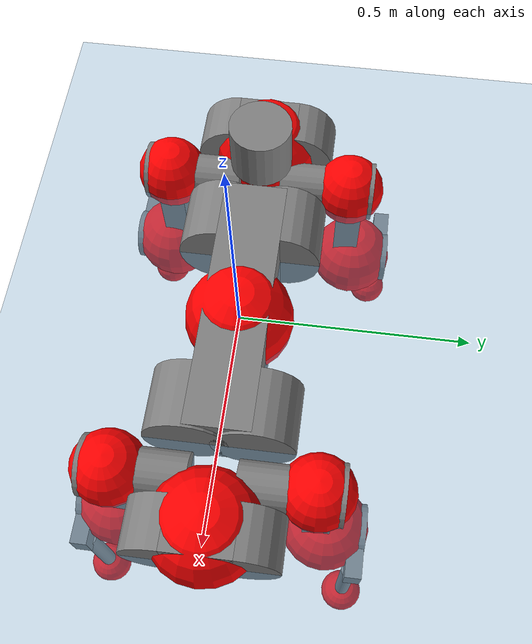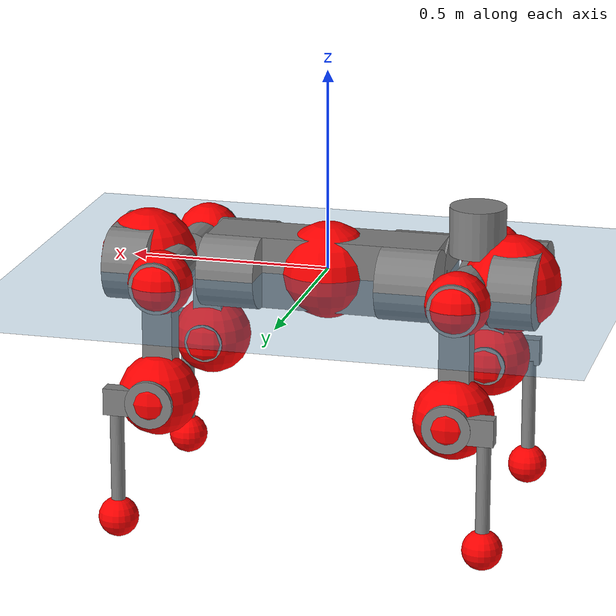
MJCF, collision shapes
<mujoco model="anymal_c">
  <compiler angle="radian" assetdir="assets" balanceinertia="true" inertiafromgeom="false"/>

  <option timestep="0.005" density="1.2" viscosity="2e-05"/>

  <size nkey="1"/>

  <visual>
    <quality shadowsize="8192"/>
    <map shadowclip="0.5"/>
  </visual>

  <default>
    <default class="/">
      <material specular="0" shininess="0.25"/>
      <geom contype="0" conaffinity="0" group="1" solref="-1000 -80"/>
      <site size="0.01 0.005 0.005" group="5"/>
      <general forcelimited="true" forcerange="-80 80" biastype="affine" gainprm="80" biasprm="0 -80 -2"/>
      <default class="anymal_c">
        <joint armature="0.01" damping="0.01" frictionloss="0.1"/>
        <default class="visual">
          <geom type="mesh" group="2"/>
          <default class="visual_zflip"/>
        </default>
        <default class="collision">
          <geom type="cylinder" group="3"/>
          <default class="foot">
            <geom size="0.03 0 0" type="sphere" condim="6" priority="1" friction="0.8 0.02 0.01" solimp="0.015 1 0.03"/>
          </default>
        </default>
      </default>
      <default class="reward_collision_sphere">
        <geom group="5" rgba="1 0 0 1"/>
      </default>
    </default>
  </default>

  <asset>
    <texture type="skybox" colorspace="auto" name="//unnamed_texture_0" builtin="gradient" rgb1="0.95 0.95 0.95" rgb2="0.95 0.95 0.95" width="100" height="600"/>
    <texture type="2d" colorspace="auto" name="texplane" builtin="checker" rgb1="0.345 0.575 0.748" rgb2="0.345 0.575 0.748" markrgb="1 1 1" width="512" height="512"/>
    <texture type="2d" colorspace="linear" name="base" file="base.png"/>
    <texture type="2d" colorspace="linear" name="top_shell" file="top_shell.png"/>
    <texture type="2d" colorspace="linear" name="bottom_shell" file="bottom_shell.png"/>
    <texture type="2d" colorspace="linear" name="remote" file="remote.png"/>
    <texture type="2d" colorspace="linear" name="hatch" file="hatch.png"/>
    <texture type="2d" colorspace="linear" name="handle" file="handle.png"/>
    <texture type="2d" colorspace="linear" name="face" file="face.png"/>
    <texture type="2d" colorspace="linear" name="battery" file="battery.png"/>
    <texture type="2d" colorspace="linear" name="lidar_cage" file="lidar_cage.png"/>
    <texture type="2d" colorspace="linear" name="depth_camera" file="depth_camera.png"/>
    <texture type="2d" colorspace="linear" name="wide_angle_camera" file="wide_angle_camera.png"/>
    <texture type="2d" colorspace="linear" name="lidar" file="lidar.png"/>
    <texture type="2d" colorspace="linear" name="drive" file="drive.png"/>
    <texture type="2d" colorspace="linear" name="hip_l" file="hip_l.png"/>
    <texture type="2d" colorspace="linear" name="shank_l" file="shank_l.png"/>
    <texture type="2d" colorspace="linear" name="foot" file="foot.png"/>
    <texture type="2d" colorspace="linear" name="thigh" file="thigh.png"/>
    <texture type="2d" colorspace="linear" name="shank_r" file="shank_r.png"/>
    <texture type="2d" colorspace="linear" name="hip_r" file="hip_r.png"/>
    <material name="MatPlane" class="/" texture="texplane" texuniform="true" texrepeat="2 2" specular="0.9" shininess="0.5"/>
    <material name="black_plastic" class="/" rgba="0.007 0.007 0.007 1"/>
    <material name="green" class="/" rgba="0.052 0.178 0.033 1"/>
    <material name="red" class="/" rgba="0.178 0.006 0.005 1"/>
    <material name="yellow" class="/" rgba="0.178 0.119 0.006 1"/>
    <material name="lwl" class="/" rgba="0.8 0.8 0.8 1"/>
    <material name="base" class="/" texture="base"/>
    <material name="top_shell" class="/" texture="top_shell"/>
    <material name="bottom_shell" class="/" texture="bottom_shell"/>
    <material name="hip_l" class="/" texture="hip_l"/>
    <material name="thigh" class="/" texture="thigh"/>
    <material name="shank_l" class="/" texture="shank_l"/>
    <material name="foot" class="/" texture="foot"/>
    <material name="hip_r" class="/" texture="hip_r"/>
    <material name="shank" class="/" texture="shank_r"/>
    <material name="hatch" class="/" texture="hatch"/>
    <material name="remote" class="/" texture="remote"/>
    <material name="handle" class="/" texture="handle"/>
    <material name="face" class="/" texture="face"/>
    <material name="depth_camera" class="/" texture="depth_camera"/>
    <material name="wide_angle_camera" class="/" texture="wide_angle_camera"/>
    <material name="battery" class="/" texture="battery"/>
    <material name="lidar_cage" class="/" texture="lidar_cage"/>
    <material name="lidar" class="/" texture="lidar"/>
    <material name="drive" class="/" texture="drive"/>
    <mesh name="base_0" class="/" file="base_0.obj"/>
    <mesh name="base_1" class="/" file="base_1.obj"/>
    <mesh name="base_2" class="/" file="base_2.obj"/>
    <mesh name="base_3" class="/" file="base_3.obj"/>
    <mesh name="base_4" class="/" file="base_4.obj"/>
    <mesh name="base_5" class="/" file="base_5.obj"/>
    <mesh name="top_shell" class="/" file="top_shell.obj"/>
    <mesh name="bottom_shell" class="/" file="bottom_shell.obj"/>
    <mesh name="remote" class="/" file="remote.obj"/>
    <mesh name="handle" class="/" file="handle.obj"/>
    <mesh name="face" class="/" file="face.obj"/>
    <mesh name="wide_angle_camera" class="/" file="wide_angle_camera.obj"/>
    <mesh name="depth_camera" class="/" file="depth_camera.obj"/>
    <mesh name="battery" class="/" file="battery.obj"/>
    <mesh name="lidar_cage" class="/" file="lidar_cage.obj"/>
    <mesh name="lidar" class="/" file="lidar.obj"/>
    <mesh name="drive" class="/" file="drive.obj"/>
    <mesh name="hip_l" class="/" file="hip_l.obj"/>
    <mesh name="thigh" class="/" file="thigh.obj"/>
    <mesh name="shank_l" class="/" file="shank_l.obj"/>
    <mesh name="foot" class="/" file="foot.obj"/>
    <mesh name="hip_r" class="/" file="hip_r.obj"/>
    <mesh name="hatch" class="/" file="hatch.obj"/>
    <mesh name="shank_r" class="/" file="shank_r.obj"/>
  </asset>

  <worldbody>
    <geom name="floor" class="/" size="100 100 0.125" type="plane" group="0" material="MatPlane"/>
    <light name="toplight_shadow" class="/" pos="0 0 5" dir="0.0990148 0.0990148 -0.990148" type="directional" ambient="0.04 0.04 0.04" diffuse="0.55 0.55 0.55" specular="0.12 0.12 0.12"/>
    <light name="toplight_fill" class="/" pos="0 0 5" dir="0.0990148 0.0990148 -0.990148" type="directional" castshadow="false" ambient="0.04 0.04 0.04" diffuse="0.3 0.3 0.3" specular="0.08 0.08 0.08"/>
    <body name="trunk" childclass="anymal_c" pos="-0.00106972 0.00034157 -0.00213053" quat="0.999999 -3.7161e-06 -0.00118587 0.000334051">
      <inertial pos="0.00200518 0.0026841 0.0452959" quat="0.501811 0.504829 0.488973 0.504221" mass="18.7465" diaginertia="0.752084 0.64463 0.186702"/>
      <joint name="//unnamed_joint_0" type="free" armature="0" damping="0" frictionloss="0"/>
      <geom name="//unnamed_geom_1" class="visual" material="green" mesh="base_0"/>
      <geom name="//unnamed_geom_2" class="visual" material="yellow" mesh="base_1"/>
      <geom name="//unnamed_geom_3" class="visual" material="red" mesh="base_2"/>
      <geom name="//unnamed_geom_4" class="visual" material="black_plastic" mesh="base_3"/>
      <geom name="//unnamed_geom_5" class="visual" material="lwl" mesh="base_4"/>
      <geom name="//unnamed_geom_6" class="visual" material="base" mesh="base_5"/>
      <geom name="trunk_1" class="collision" size="0.289201 0.0698071 0.089752" type="box"/>
      <geom name="trunk_2" class="collision" size="0.089752 0.0723002" pos="0.223017 0.0700204 0" quat="0.707107 0 0.707107 0"/>
      <geom name="trunk_3" class="collision" size="0.089752 0.0723002" pos="-0.223017 0.0700204 0" quat="0.707107 0 0.707107 0"/>
      <geom name="trunk_4" class="collision" size="0.089752 0.0723002" pos="0.223017 -0.0700204 0" quat="0.707107 0 0.707107 0"/>
      <geom name="trunk_5" class="collision" size="0.089752 0.0723002" pos="-0.223017 -0.0700204 0" quat="0.707107 0 0.707107 0"/>
      <geom name="//unnamed_geom_12" class="visual" material="top_shell" mesh="top_shell"/>
      <geom name="//unnamed_geom_13" class="visual" material="bottom_shell" mesh="bottom_shell"/>
      <geom name="//unnamed_geom_14" class="visual" material="remote" mesh="remote"/>
      <geom name="//unnamed_geom_15" class="visual" material="handle" mesh="handle"/>
      <geom name="//unnamed_geom_16" class="visual" pos="0.425014 0 0" quat="1 0 0 0" material="face" mesh="face"/>
      <geom name="trunk_6" class="collision" size="0.0548484 0.0698071 0.089752" pos="0.48141 0 0" type="box"/>
      <geom name="//unnamed_geom_18" class="collision" size="0.089752 0.0548484" pos="0.48141 0.0700204 0" quat="0.707107 0 0.707107 0"/>
      <geom name="//unnamed_geom_19" class="collision" size="0.089752 0.0548484" pos="0.48141 -0.0700204 0" quat="0.707107 0 0.707107 0"/>
      <geom name="//unnamed_geom_20" class="visual" pos="0.473358 0 -0.0277587" quat="0.965926 0 0.258819 0" material="depth_camera" mesh="depth_camera"/>
      <geom name="//unnamed_geom_21" class="visual" pos="0.526013 0 0.0144621" material="wide_angle_camera" mesh="wide_angle_camera"/>
      <geom name="//unnamed_geom_22" class="visual_zflip" pos="-0.425014 0 0" quat="0 0 0 1" material="face" mesh="face"/>
      <geom name="trunk_7" class="collision" size="0.0548484 0.0698071 0.089752" pos="-0.48141 0 0" quat="0 0 0 1" type="box"/>
      <geom name="//unnamed_geom_24" class="collision" size="0.089752 0.0548484" pos="-0.48141 -0.0700204 0" quat="0 -0.707107 0 0.707107"/>
      <geom name="//unnamed_geom_25" class="collision" size="0.089752 0.0548484" pos="-0.48141 0.0700204 0" quat="0 -0.707107 0 0.707107"/>
      <geom name="//unnamed_geom_26" class="visual" pos="-0.473358 0 -0.0277587" quat="0 -0.258819 0 0.965926" material="depth_camera" mesh="depth_camera"/>
      <geom name="//unnamed_geom_27" class="visual_zflip" pos="-0.526013 0 0.0144621" quat="0 0 0 1" material="wide_angle_camera" mesh="wide_angle_camera"/>
      <geom name="//unnamed_geom_28" class="visual" material="battery" mesh="battery"/>
      <geom name="//unnamed_geom_29" class="visual" pos="0 0.0761508 0.0285151" quat="0.683013 -0.183013 0.183013 0.683013" material="depth_camera" mesh="depth_camera"/>
      <geom name="//unnamed_geom_30" class="visual" pos="0 -0.0761508 0.0285151" quat="0.683013 0.183013 0.183013 -0.683013" material="depth_camera" mesh="depth_camera"/>
      <geom name="//unnamed_geom_31" class="visual" pos="-0.373233 0 0.0710064" quat="1 0 0 0" material="lidar_cage" mesh="lidar_cage"/>
      <geom name="trunk_8" class="collision" size="0.0698071 0.0598346" pos="-0.373233 0 0.128971"/>
      <geom name="//unnamed_geom_33" class="visual" pos="-0.373233 -9.85112e-06 0.137376" quat="0.707107 0 0 -0.707107" material="lidar" mesh="lidar"/>
      <geom name="//unnamed_geom_34" class="visual" pos="0.307507 0.104018 5.90272e-10" quat="0.258819 0.965926 0 0" material="drive" mesh="drive"/>
      <geom name="//unnamed_geom_35" class="visual" pos="0.307507 -0.104018 -5.90272e-10" quat="0.258819 -0.965926 0 0" material="drive" mesh="drive"/>
      <geom name="//unnamed_geom_36" class="visual" pos="-0.307507 0.104018 -5.90272e-10" quat="0 0 0.965926 -0.258819" material="drive" mesh="drive"/>
      <geom name="//unnamed_geom_37" class="visual" pos="-0.307507 -0.104018 5.90272e-10" quat="0 0 -0.965926 -0.258819" material="drive" mesh="drive"/>
      <geom name="//unnamed_geom_38" class="visual" pos="0.118943 0 0.0705234" quat="1 0 0 0" material="hatch" mesh="hatch"/>
      <geom name="//unnamed_geom_39" class="reward_collision_sphere" size="0.119669"/>
      <geom name="//unnamed_geom_40" class="reward_collision_sphere" size="0.119669" pos="0.461415 0 0"/>
      <geom name="//unnamed_geom_41" class="reward_collision_sphere" size="0.119669" pos="-0.461415 0 0"/>
      <site name="imu" pos="0.251092 0.020251 0.0306145" size="0.00997244"/>
      <camera name="track" pos="0 -2.00058 0" quat="0.707107 0.707107 0 0" mode="trackcom"/>
      <camera name="ego_camera" pos="0.461415 0 -0.0386429" quat="-0.5 -0.5 0.5 0.5"/>
      <body name="LF_HIP" pos="0.308295 0.105594 0.0025411" quat="0.258931 0.965896 9.82672e-05 0.000201848">
        <inertial pos="0.0555533 -0.01443 -0.00998378" quat="-0.133975 0.712275 -0.126485 0.677286" mass="2.68347" diaginertia="0.00667075 0.0047753 0.00268721"/>
        <joint name="LF_HAA" pos="0 0 0" axis="0.999929 0.00119346 -0.0118668" range="-0.730532 0.531537" armature="0.00995077" damping="0" frictionloss="0.110194"/>
        <geom name="//unnamed_geom_42" class="visual" pos="0 3.4723e-05 -5.70323e-06" quat="0.258819 -0.965926 0 0" material="hip_l" mesh="hip_l"/>
        <geom name="//unnamed_geom_43" class="visual" pos="0.0614195 -0.0740804 -0.0425173" quat="0.183013 -0.683013 0.683013 0.183013" material="drive" mesh="drive"/>
        <geom name="//unnamed_geom_44" class="collision" size="0.0498622 0.0698071" pos="0.0614195 -0.0119633 -0.00667074" quat="-0.353553 -0.612372 0.612372 -0.353553"/>
        <body name="LF_THIGH" pos="0.0589671 -0.0706549 -0.0381513" quat="0.18302 -0.683003 0.683021 0.183011">
          <inertial pos="0.0318884 0.000716531 -0.23698" quat="0.993259 -0.00554622 -0.0787298 0.0849007" mass="2.92505" diaginertia="0.0328337 0.0289616 0.00328218"/>
          <joint name="LF_HFE" pos="0 0 0" axis="0.999995 -0.00276928 0.00169855" range="-3.19126 3.14005" armature="0.00872612" damping="0.0214626" frictionloss="0.0992596"/>
          <geom name="//unnamed_geom_45" class="visual" pos="0.000498885 7.86126e-07 0" quat="0.707107 0 0 -0.707107" material="thigh" mesh="thigh"/>
          <geom name="//unnamed_geom_46" class="collision" size="0.0648209 0.0398898" pos="0.0410147 0 0" quat="0.5 0.5 -0.5 -0.5"/>
          <geom name="//unnamed_geom_47" class="collision" size="0.0373966 0.0299173 0.140925" pos="0.030761 0 -0.13652" quat="0.707107 0 0 -0.707107" type="box"/>
          <geom name="//unnamed_geom_48" class="visual" pos="0.102844 0 -0.275331" quat="1 0 0 0" material="drive" mesh="drive"/>
          <geom name="//unnamed_geom_49" class="collision" size="0.0498622 0.0698071" pos="0.0310686 0 -0.275331" quat="0.707107 0 0.707107 0"/>
          <geom name="//unnamed_geom_50" class="reward_collision_sphere" size="0.0797795" pos="0.0256342 0 0"/>
          <body name="LF_SHANK" pos="0.102814 0.000477322 -0.276686" quat="1 2.46666e-05 1.21896e-05 -2.91888e-05">
            <inertial pos="0.0039562 -0.0636109 -0.0782842" quat="0.99278 -0.117191 -0.0009547 -0.0255607" mass="0.587301" diaginertia="0.0111548 0.00913953 0.000937161"/>
            <joint name="LF_KFE" pos="0 0 0" axis="1 -0.000148949 -0.000561139" range="-3.17489 3.18636" armature="0.0100765" damping="0.0120536" frictionloss="0.109567"/>
            <geom name="//unnamed_geom_51" class="visual" pos="0.000162676 0.000867395 0" quat="0.707107 0 0 -0.707107" material="shank_l" mesh="shank_l"/>
            <geom name="LF_kfe_act" class="collision" size="0.0598346 0.0199449" pos="0.0205073 0 0" quat="0.5 0.5 -0.5 -0.5"/>
            <geom name="//unnamed_geom_53" class="collision" size="0.0573405 0.033657 0.0189476" pos="0.0205073 -0.0575158 0" quat="0.5 0.5 -0.5 -0.5" type="box"/>
            <geom name="//unnamed_geom_54" class="visual" pos="0.013381 -0.0876961 -0.326504" quat="0.382683 0 0 -0.92388" material="foot" mesh="foot"/>
            <geom name="LF_calf" class="collision" size="0.0174518 0.140863" pos="0.013381 -0.0879757 -0.163252" quat="0.707107 0 0 -0.707107"/>
            <geom name="LF_foot" class="foot" size="0.0294502" pos="0.013381 -0.0879757 -0.304767" quat="0.707107 0 0 -0.707107"/>
            <geom name="//unnamed_geom_57" class="reward_collision_sphere" size="0.0997244" pos="-0.0512683 0 0"/>
            <geom name="//unnamed_geom_58" class="reward_collision_sphere" size="0.0498622" pos="0.013381 -0.0879757 -0.304767"/>
            <site name="LF_foot" class="foot" pos="0.013381 -0.0879757 -0.304767" quat="0.707107 0 0 -0.707107" size="0.00997244"/>
          </body>
        </body>
      </body>
      <body name="RF_HIP" pos="0.30604 -0.103603 0.00227217" quat="0.258646 -0.965972 0.000610098 0.000528738">
        <inertial pos="0.0571138 0.0154912 -0.00857666" quat="0.144002 0.674632 0.127016 0.712743" mass="2.8156" diaginertia="0.0065364 0.00488183 0.00271996"/>
        <joint name="RF_HAA" pos="0 0 0" axis="0.999964 0.00593327 -0.00604638" range="-0.53631 0.68223" armature="0.00988481" damping="0" frictionloss="0.112752"/>
        <geom name="//unnamed_geom_59" class="visual" pos="0 -3.47228e-05 -5.70322e-06" quat="0.258819 0.965926 0 0" material="hip_r" mesh="hip_r"/>
        <geom name="//unnamed_geom_60" class="visual" pos="0.0614195 0.0740804 -0.0425173" quat="0.183013 0.683013 0.683013 -0.183013" material="drive" mesh="drive"/>
        <geom name="//unnamed_geom_61" class="collision" size="0.0498622 0.0698071" pos="0.0614195 0.0119633 -0.00667074" quat="-0.353553 0.612372 0.612372 0.353553"/>
        <body name="RF_THIGH" pos="0.0620763 0.0700532 -0.041262" quat="0.182453 0.683266 0.682885 -0.183102">
          <inertial pos="0.0299434 0.000500305 -0.237239" quat="0.992759 -0.00536006 -0.0808117 0.0887195" mass="3.1624" diaginertia="0.0343682 0.0289753 0.00359915"/>
          <joint name="RF_HFE" pos="0 0 0" axis="1 0.00073755 -0.000603322" stiffness="0.0149413" range="-3.14514 3.09158" armature="0.00916028" damping="0.00408182" frictionloss="0.0856763"/>
          <geom name="//unnamed_geom_62" class="visual" pos="0.000498885 7.86126e-07 0" quat="0.707107 0 0 -0.707107" material="thigh" mesh="thigh"/>
          <geom name="//unnamed_geom_63" class="collision" size="0.0648209 0.0398898" pos="0.0410147 0 0" quat="0.5 0.5 0.5 0.5"/>
          <geom name="//unnamed_geom_64" class="collision" size="0.0373966 0.0299173 0.140925" pos="0.030761 0 -0.13652" quat="0.707107 0 0 0.707107" type="box"/>
          <geom name="//unnamed_geom_65" class="visual" pos="0.102844 0 -0.275331" quat="1 0 0 0" material="drive" mesh="drive"/>
          <geom name="//unnamed_geom_66" class="collision" size="0.0498622 0.0698071" pos="0.0310686 0 -0.275331" quat="0.707107 0 0.707107 0"/>
          <geom name="//unnamed_geom_67" class="reward_collision_sphere" size="0.0797795" pos="0.0256342 0 0"/>
          <body name="RF_SHANK" pos="0.100253 -0.000111517 -0.27596" quat="1 0.000141913 0.000335934 7.87704e-06">
            <inertial pos="0.00617393 0.0587466 -0.0748494" quat="0.992841 0.11464 -0.00626377 0.0329327" mass="0.572224" diaginertia="0.0112325 0.00926126 0.000882835"/>
            <joint name="RF_KFE" pos="0 0 0" axis="0.999995 0.00310925 0.000339723" range="-3.13835 3.15824" armature="0.0096493" damping="0" frictionloss="0.0903055"/>
            <geom name="//unnamed_geom_68" class="visual" pos="0.000162675 -0.000867393 0" quat="0.707107 0 0 0.707107" material="shank" mesh="shank_r"/>
            <geom name="RF_kfe_act" class="collision" size="0.0598346 0.0199449" pos="0.0205073 0 0" quat="0.5 0.5 0.5 0.5"/>
            <geom name="//unnamed_geom_70" class="collision" size="0.0573405 0.033657 0.0189476" pos="0.0205073 0.0575158 0" quat="0.5 0.5 0.5 0.5" type="box"/>
            <geom name="//unnamed_geom_71" class="visual" pos="0.0133811 0.0876961 -0.326504" quat="0.382683 0 0 0.92388" material="foot" mesh="foot"/>
            <geom name="RF_calf" class="collision" size="0.0174518 0.140863" pos="0.013381 0.0879757 -0.163252" quat="0.707107 0 0 0.707107"/>
            <geom name="RF_foot" class="foot" size="0.0274311" pos="0.013381 0.0879757 -0.304767" quat="0.707107 0 0 0.707107"/>
            <geom name="//unnamed_geom_74" class="reward_collision_sphere" size="0.0997244" pos="-0.0512683 0 0"/>
            <geom name="//unnamed_geom_75" class="reward_collision_sphere" size="0.0498622" pos="0.013381 0.0879757 -0.304767"/>
            <site name="RF_foot" class="foot" pos="0.013381 0.0879757 -0.304767" quat="0.707107 0 0 0.707107" size="0.00997244"/>
          </body>
        </body>
      </body>
      <body name="LH_HIP" pos="-0.307307 0.101996 0.00325345" quat="-0.0002676 -8.40046e-05 0.965962 -0.258685">
        <inertial pos="0.0579826 0.0125413 -0.0101634" quat="0.135804 0.67993 0.12237 0.710125" mass="2.71052" diaginertia="0.00629604 0.00485418 0.00259239"/>
        <joint name="LH_HAA" pos="0 0 0" axis="0.999896 -0.00848211 0.0116975" range="-0.547312 0.772083" armature="0.011309" damping="0.00631563" frictionloss="0.100578"/>
        <geom name="//unnamed_geom_76" class="visual" pos="0 -3.47228e-05 -5.70322e-06" quat="-0.258819 -0.965926 0 0" material="hip_r" mesh="hip_r"/>
        <geom name="//unnamed_geom_77" class="visual" pos="0.0614195 0.0740804 -0.0425173" quat="0.183013 0.683013 0.683013 -0.183013" material="drive" mesh="drive"/>
        <geom name="//unnamed_geom_78" class="collision" size="0.0498622 0.0698071" pos="0.0614195 0.0119633 -0.00667074" quat="-0.353553 0.612372 0.612372 0.353553"/>
        <body name="LH_THIGH" pos="0.0610258 0.0701417 -0.0401287" quat="0.18286 0.684132 0.681962 -0.182903">
          <inertial pos="0.0334675 -0.0029373 -0.239057" quat="0.992773 -0.00457221 -0.0806722 0.0887246" mass="3.11778" diaginertia="0.0360444 0.0301328 0.00371362"/>
          <joint name="LH_HFE" pos="0 0 0" axis="0.999938 0.00802136 -0.00775157" stiffness="0.00612496" range="-3.19526 3.13556" armature="0.0100703" damping="0.000977739" frictionloss="0.107865"/>
          <geom name="//unnamed_geom_79" class="visual" pos="0.000498885 7.86126e-07 0" quat="0.707107 0 0 -0.707107" material="thigh" mesh="thigh"/>
          <geom name="//unnamed_geom_80" class="collision" size="0.0648209 0.0398898" pos="0.0410147 0 0" quat="0.5 0.5 -0.5 -0.5"/>
          <geom name="//unnamed_geom_81" class="collision" size="0.0373966 0.0299173 0.140925" pos="0.030761 0 -0.13652" quat="0.707107 0 0 -0.707107" type="box"/>
          <geom name="//unnamed_geom_82" class="visual" pos="0.102844 0 -0.275331" quat="1 0 0 0" material="drive" mesh="drive"/>
          <geom name="//unnamed_geom_83" class="collision" size="0.0498622 0.0698071" pos="0.0310686 0 -0.275331" quat="0.707107 0 0.707107 0"/>
          <geom name="//unnamed_geom_84" class="reward_collision_sphere" size="0.0797795" pos="0.0256342 0 0"/>
          <body name="LH_SHANK" pos="0.100798 -0.000775582 -0.277139" quat="0.999999 -0.000916465 -0.00116712 0.000272169">
            <inertial pos="0.00338794 0.0637716 -0.0798127" quat="0.993147 0.112196 -0.0124287 0.0302785" mass="0.561059" diaginertia="0.0110755 0.00870514 0.000925551"/>
            <joint name="LH_KFE" pos="0 0 0" axis="0.999993 -0.00331152 0.0019878" range="-3.16311 3.10696" armature="0.0112848" damping="0.000682147" frictionloss="0.100276"/>
            <geom name="//unnamed_geom_85" class="visual" pos="0.000162675 -0.000867393 0" quat="-0.707107 0 0 -0.707107" material="shank" mesh="shank_r"/>
            <geom name="LH_kfe_act" class="collision" size="0.0598346 0.0199449" pos="0.0205073 0 0" quat="0.5 0.5 -0.5 -0.5"/>
            <geom name="//unnamed_geom_87" class="collision" size="0.0573405 0.033657 0.0189476" pos="0.0205073 0.0575158 0" quat="0.5 0.5 -0.5 -0.5" type="box"/>
            <geom name="//unnamed_geom_88" class="visual" pos="0.0133811 0.0876961 -0.326504" quat="-0.382683 0 0 -0.92388" material="foot" mesh="foot"/>
            <geom name="LH_calf" class="collision" size="0.0174518 0.140863" pos="0.013381 0.0879757 -0.163252" quat="0.707107 0 0 -0.707107"/>
            <geom name="LH_foot" class="foot" size="0.0322258" pos="0.013381 0.0879757 -0.304767" quat="0.707107 0 0 -0.707107"/>
            <geom name="//unnamed_geom_91" class="reward_collision_sphere" size="0.0997244" pos="-0.0512683 0 0"/>
            <geom name="//unnamed_geom_92" class="reward_collision_sphere" size="0.0498622" pos="0.013381 0.0879757 -0.304767"/>
            <site name="LH_foot" class="foot" pos="0.013381 0.0879757 -0.304767" quat="0.707107 0 0 -0.707107" size="0.00997244"/>
          </body>
        </body>
      </body>
      <body name="RH_HIP" pos="-0.30566 -0.104637 0.00327087" quat="5.68821e-05 -0.00037903 -0.96597 -0.258654">
        <inertial pos="0.0552877 -0.0178283 -0.00822604" quat="-0.124923 0.715225 -0.1247 0.676238" mass="2.77431" diaginertia="0.00701736 0.00507896 0.00291811"/>
        <joint name="RH_HAA" pos="0 0 0" axis="0.999963 0.0079848 -0.00331332" range="-0.760869 0.489089" armature="0.00991983" damping="0.0102902" frictionloss="0.108599"/>
        <geom name="//unnamed_geom_93" class="visual" pos="0 3.4723e-05 -5.70323e-06" quat="-0.258819 0.965926 0 0" material="hip_l" mesh="hip_l"/>
        <geom name="//unnamed_geom_94" class="visual" pos="0.0614195 -0.0740804 -0.0425173" quat="-0.183013 0.683013 -0.683013 -0.183013" material="drive" mesh="drive"/>
        <geom name="//unnamed_geom_95" class="collision" size="0.0498622 0.0698071" pos="0.0614195 -0.0119633 -0.00667074" quat="0.353553 0.612372 -0.612372 0.353553"/>
        <body name="RH_THIGH" pos="0.0621686 -0.0716152 -0.0428727" quat="-0.182572 0.683022 -0.683134 -0.182967">
          <inertial pos="0.0333311 -0.00221583 -0.239887" quat="0.994594 -0.0072679 -0.0712658 0.0751745" mass="2.96" diaginertia="0.0352992 0.0296022 0.00348698"/>
          <joint name="RH_HFE" pos="0 0 0" axis="0.999966 -0.00807582 -0.00136867" range="-3.12989 3.08811" armature="0.0100316" damping="0" frictionloss="0.100355"/>
          <geom name="//unnamed_geom_96" class="visual" pos="0.000498885 7.86126e-07 0" quat="0.707107 0 0 -0.707107" material="thigh" mesh="thigh"/>
          <geom name="//unnamed_geom_97" class="collision" size="0.0648209 0.0398898" pos="0.0410147 0 0" quat="0.5 0.5 0.5 0.5"/>
          <geom name="//unnamed_geom_98" class="collision" size="0.0373966 0.0299173 0.140925" pos="0.030761 0 -0.13652" quat="0.707107 0 0 0.707107" type="box"/>
          <geom name="//unnamed_geom_99" class="visual" pos="0.102844 0 -0.275331" quat="1 0 0 0" material="drive" mesh="drive"/>
          <geom name="//unnamed_geom_100" class="collision" size="0.0498622 0.0698071" pos="0.0310686 0 -0.275331" quat="0.707107 0 0.707107 0"/>
          <geom name="//unnamed_geom_101" class="reward_collision_sphere" size="0.0797795" pos="0.0256342 0 0"/>
          <body name="RH_SHANK" pos="0.100689 0.00332972 -0.277558" quat="1 -0.000460138 0.000531563 0.000434174">
            <inertial pos="0.00630036 -0.0612666 -0.0783416" quat="0.992215 -0.122024 0.0097607 -0.0229118" mass="0.607429" diaginertia="0.0120222 0.00978898 0.00094129"/>
            <joint name="RH_KFE" pos="0 0 0" axis="0.999949 -0.00339086 -0.00952013" range="-3.07471 3.14111" armature="0.0102042" damping="0" frictionloss="0.0997744"/>
            <geom name="//unnamed_geom_102" class="visual" pos="0.000162676 0.000867395 0" quat="0.707107 0 0 -0.707107" material="shank_l" mesh="shank_l"/>
            <geom name="RH_kfe_act" class="collision" size="0.0598346 0.0199449" pos="0.0205073 0 0" quat="0.5 0.5 0.5 0.5"/>
            <geom name="//unnamed_geom_104" class="collision" size="0.0573405 0.033657 0.0189476" pos="0.0205073 -0.0575158 0" quat="0.5 0.5 0.5 0.5" type="box"/>
            <geom name="//unnamed_geom_105" class="visual" pos="0.013381 -0.0876961 -0.326504" quat="0.382683 0 0 -0.92388" material="foot" mesh="foot"/>
            <geom name="RH_calf" class="collision" size="0.0174518 0.140863" pos="0.013381 -0.0879757 -0.163252" quat="0.707107 0 0 0.707107"/>
            <geom name="RH_foot" class="foot" size="0.0264738" pos="0.013381 -0.0879757 -0.304767" quat="0.707107 0 0 0.707107"/>
            <geom name="//unnamed_geom_108" class="reward_collision_sphere" size="0.0997244" pos="-0.0512683 0 0"/>
            <geom name="//unnamed_geom_109" class="reward_collision_sphere" size="0.0498622" pos="0.013381 -0.0879757 -0.304767"/>
            <site name="RH_foot" class="foot" pos="0.013381 -0.0879757 -0.304767" quat="0.707107 0 0 0.707107" size="0.00997244"/>
          </body>
        </body>
      </body>
    </body>
  </worldbody>

  <contact>
    <pair class="/" geom1="floor" geom2="LF_foot" name="//unnamed_contact_0"/>
    <pair class="/" geom1="floor" geom2="RF_foot" name="//unnamed_contact_1"/>
    <pair class="/" geom1="floor" geom2="LH_foot" name="//unnamed_contact_2"/>
    <pair class="/" geom1="floor" geom2="RH_foot" name="//unnamed_contact_3"/>
  </contact>

  <actuator>
    <general name="LF_HAA" class="/" joint="LF_HAA" forcerange="-78.8474 78.8474" gainprm="79.7941" biasprm="0 -79.7941 -1.80895"/>
    <general name="LF_HFE" class="/" joint="LF_HFE" forcerange="-77.6191 77.6191" gainprm="79.7941" biasprm="0 -79.7941 -1.80895"/>
    <general name="LF_KFE" class="/" joint="LF_KFE" forcerange="-87.1597 87.1597" gainprm="79.7941" biasprm="0 -79.7941 -1.80895"/>
    <general name="RF_HAA" class="/" joint="RF_HAA" forcerange="-83.551 83.551" gainprm="79.7941" biasprm="0 -79.7941 -1.80895"/>
    <general name="RF_HFE" class="/" joint="RF_HFE" forcerange="-88.8043 88.8043" gainprm="79.7941" biasprm="0 -79.7941 -1.80895"/>
    <general name="RF_KFE" class="/" joint="RF_KFE" forcerange="-77.9738 77.9738" gainprm="79.7941" biasprm="0 -79.7941 -1.80895"/>
    <general name="LH_HAA" class="/" joint="LH_HAA" forcerange="-78.5995 78.5995" gainprm="79.7941" biasprm="0 -79.7941 -1.80895"/>
    <general name="LH_HFE" class="/" joint="LH_HFE" forcerange="-73.4356 73.4356" gainprm="79.7941" biasprm="0 -79.7941 -1.80895"/>
    <general name="LH_KFE" class="/" joint="LH_KFE" forcerange="-87.982 87.982" gainprm="79.7941" biasprm="0 -79.7941 -1.80895"/>
    <general name="RH_HAA" class="/" joint="RH_HAA" forcerange="-80.1603 80.1603" gainprm="79.7941" biasprm="0 -79.7941 -1.80895"/>
    <general name="RH_HFE" class="/" joint="RH_HFE" forcerange="-78.08 78.08" gainprm="79.7941" biasprm="0 -79.7941 -1.80895"/>
    <general name="RH_KFE" class="/" joint="RH_KFE" forcerange="-87.4039 87.4039" gainprm="79.7941" biasprm="0 -79.7941 -1.80895"/>
  </actuator>

  <sensor>
    <gyro site="imu" name="imu_angular_velocity"/>
    <velocimeter site="imu" name="imu_linear_velocity"/>
    <framelinvel objtype="site" objname="LF_foot" name="LF_foot_global_linear_velocity"/>
    <framelinvel objtype="site" objname="RF_foot" name="RF_foot_global_linear_velocity"/>
    <framelinvel objtype="site" objname="LH_foot" name="LH_foot_global_linear_velocity"/>
    <framelinvel objtype="site" objname="RH_foot" name="RH_foot_global_linear_velocity"/>
  </sensor>

  <keyframe>
    <key name="home" qpos="0 0 0.55 1 0 0 0 0 0.4 -0.8 0 -0.4 0.8 0 -0.4 0.8 0 0.4 -0.8"/>
  </keyframe>
</mujoco>
